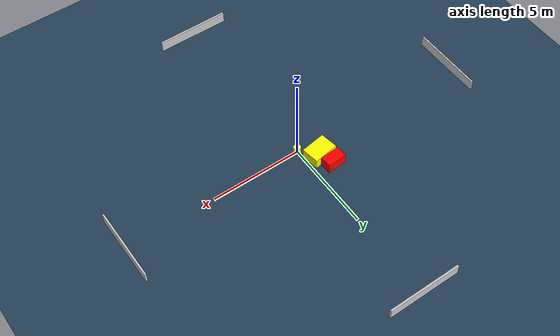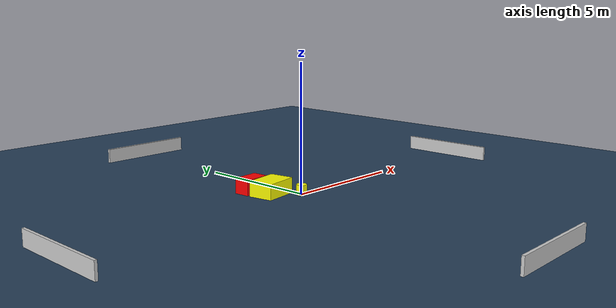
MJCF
<?xml version="1.0" ?>
<mujoco model="generated_environment">
  <option timestep="0.01" integrator="RK4" cone="elliptic"/>
  <default>
    <geom density="1"/>
  </default>
  <asset>
    <texture builtin="gradient" height="3072" name="skybox" rgb1="0.3 0.5 0.7" rgb2="0 0 0" type="skybox" width="512"/>
    <texture builtin="checker" height="300" name="groundplane" rgb1="0.2 0.3 0.4" rgb2="0.1 0.2 0.3" type="2d" width="300"/>
    <material name="groundplane" reflectance="0.2" texrepeat="5 5" texture="groundplane"/>
  </asset>
  <worldbody>
    <light dir="0 0 -1" directional="true" pos="0 0 1.5"/>
    <geom condim="3" friction="0.5 0.005 0.001" material="groundplane" name="floor" pos="0 0 0" size="0 0 0.05" type="plane"/>
    <body name="walls">
      <geom name="wall_1" condim="4" pos="-10.0 0.0 0.3" rgba="0.800000011920929 0.800000011920929 0.800000011920929 1.0" size="0.05 2.0 0.3" type="box"/>
      <geom name="wall_2" condim="4" pos="10.0 0.0 0.3" rgba="0.800000011920929 0.800000011920929 0.800000011920929 1.0" size="0.05 2.0 0.3" type="box"/>
      <geom name="wall_3" condim="4" pos="0.0 -10.0 0.3" rgba="0.800000011920929 0.800000011920929 0.800000011920929 1.0" size="2.0 0.05 0.3" type="box"/>
      <geom name="wall_4" condim="4" pos="0.0 10.0 0.3" rgba="0.800000011920929 0.800000011920929 0.800000011920929 1.0" size="2.0 0.05 0.3" type="box"/>
    </body>
    <body name="robot">
      <joint name="joint_x" type="slide" pos="0 0 0" axis="1 0 0"/>
      <joint name="joint_y" type="slide" pos="0 0 0" axis="0 1 0"/>
      <geom name="robot" type="cylinder" pos="0.0 0.0 0.2" size="0.2 0.2 0.0" mass="5.0" friction="1.0 0.005 0.0001" condim="4" rgba="1.0 1.0 0.0 1.0"/>
    </body>
    <body name="obstacle_1_movable">
      <geom name="obstacle_1_movable" condim="4" pos="-0.7963302273669138 0.8241320331448917 0.3" euler="0 0 98.98881097164157" friction="0.0 0.005 0.001" rgba="1.0 1.0 0.0 1.0" size="0.487909856024819 0.6898762494029295 0.3" type="box" mass="0.1"/>
      <joint type="free"/>
    </body>
    <body name="obstacle_2_static">
      <geom name="obstacle_2_static" condim="4" pos="-1.0519882650855696 1.66030667705934 0.3" euler="0 0 94.18338606493653" friction="0.0 0.005 0.001" rgba="1.0 0.0 0.0 1.0" size="0.316366046566096 0.5336935455038532 0.3" type="box"/>
    </body>
  </worldbody>
  <actuator>
    <motor name="actuator_x" joint="joint_x" gear="1" ctrlrange="-1 1"/>
    <motor name="actuator_y" joint="joint_y" gear="1" ctrlrange="-1 1"/>
  </actuator>
</mujoco>
